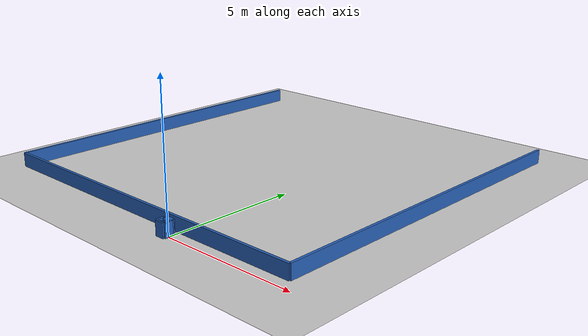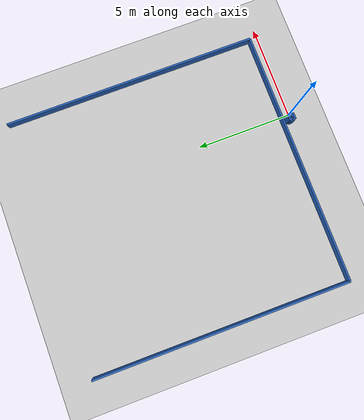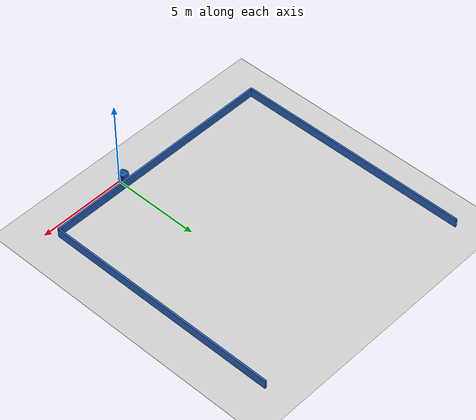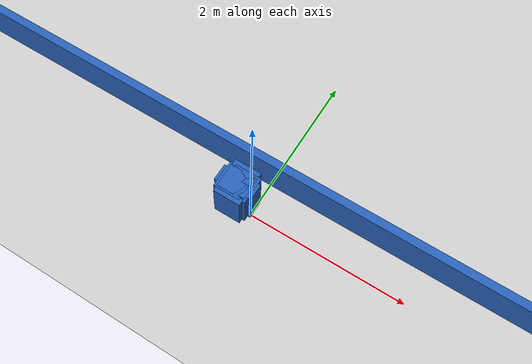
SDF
<?xml version="1.0" ?>
    <sdf version="1.5">
      <world name="default">
        <!-- A global light source -->
        <include>
          <uri>model://sun</uri>
        </include>
        <!-- A ground plane -->
        <include>
          <uri>model://ground_plane</uri>
        </include>

    <model name='libopen_space_final_T2B_87_56'>
      <static>1</static>
      <pose frame=''>-0.225000 0.075000 0.000000 0.000000 0.000000 0.000000</pose>
      <link name='link'>
        <inertial>
          <mass>1</mass>
          <inertia>
            <ixx>0.145833</ixx>
            <ixy>0</ixy>
            <ixz>0</ixz>
            <iyy>0.145833</iyy>
            <iyz>0</iyz>
            <izz>0.125</izz>
          </inertia>
        </inertial>
        <collision name='collision'>
          <geometry>
            <box>
              <size>0.26 0.35 1</size>
            </box>
          </geometry>
          <max_contacts>10</max_contacts>
          <surface>
            <contact>
              <ode/>
            </contact>
            <bounce/>
            <friction>
              <torsional>
                <ode/>
              </torsional>
              <ode/>
            </friction>
          </surface>
        </collision>
        <visual name='visual'>
          <geometry>
            <box>
              <size>0.26 0.35 1</size>
            </box>
          </geometry>
	    <material>
              <ambient>0.152000 0.379000 0.720000 1</ambient>
	      <diffuse>0.152000 0.379000 0.720000 1</diffuse>
          </material>
          <material>
            <script>
              <name>Gazebo/Grey</name>
              <uri>file://media/materials/scripts/gazebo.material</uri>
            </script>
          </material>
        </visual>
        <self_collide>0</self_collide>
        <kinematic>0</kinematic>
        <gravity>1</gravity>
      </link>
      <plugin name='libopen_space_final_T2B_87_56' filename='libopen_space_final_T2B_87_56.so'/>
    </model>

    <model name='libopen_space_final_T2B_125_59'>
      <static>1</static>
      <pose frame=''>-0.225000 0.075000 0.000000 0.000000 0.000000 0.000000</pose>
      <link name='link'>
        <inertial>
          <mass>1</mass>
          <inertia>
            <ixx>0.145833</ixx>
            <ixy>0</ixy>
            <ixz>0</ixz>
            <iyy>0.145833</iyy>
            <iyz>0</iyz>
            <izz>0.125</izz>
          </inertia>
        </inertial>
        <collision name='collision'>
          <geometry>
            <box>
              <size>0.31 0.28 1</size>
            </box>
          </geometry>
          <max_contacts>10</max_contacts>
          <surface>
            <contact>
              <ode/>
            </contact>
            <bounce/>
            <friction>
              <torsional>
                <ode/>
              </torsional>
              <ode/>
            </friction>
          </surface>
        </collision>
        <visual name='visual'>
          <geometry>
            <box>
              <size>0.31 0.28 1</size>
            </box>
          </geometry>
	    <material>
              <ambient>0.152000 0.379000 0.720000 1</ambient>
	      <diffuse>0.152000 0.379000 0.720000 1</diffuse>
          </material>
          <material>
            <script>
              <name>Gazebo/Grey</name>
              <uri>file://media/materials/scripts/gazebo.material</uri>
            </script>
          </material>
        </visual>
        <self_collide>0</self_collide>
        <kinematic>0</kinematic>
        <gravity>1</gravity>
      </link>
      <plugin name='libopen_space_final_T2B_125_59' filename='libopen_space_final_T2B_125_59.so'/>
    </model>

    <model name='libopen_space_final_T2B_126_41'>
      <static>1</static>
      <pose frame=''>-0.225000 0.075000 0.000000 0.000000 0.000000 0.000000</pose>
      <link name='link'>
        <inertial>
          <mass>1</mass>
          <inertia>
            <ixx>0.145833</ixx>
            <ixy>0</ixy>
            <ixz>0</ixz>
            <iyy>0.145833</iyy>
            <iyz>0</iyz>
            <izz>0.125</izz>
          </inertia>
        </inertial>
        <collision name='collision'>
          <geometry>
            <box>
              <size>0.13 0.15 1</size>
            </box>
          </geometry>
          <max_contacts>10</max_contacts>
          <surface>
            <contact>
              <ode/>
            </contact>
            <bounce/>
            <friction>
              <torsional>
                <ode/>
              </torsional>
              <ode/>
            </friction>
          </surface>
        </collision>
        <visual name='visual'>
          <geometry>
            <box>
              <size>0.13 0.15 1</size>
            </box>
          </geometry>
	    <material>
              <ambient>0.152000 0.379000 0.720000 1</ambient>
	      <diffuse>0.152000 0.379000 0.720000 1</diffuse>
          </material>
          <material>
            <script>
              <name>Gazebo/Grey</name>
              <uri>file://media/materials/scripts/gazebo.material</uri>
            </script>
          </material>
        </visual>
        <self_collide>0</self_collide>
        <kinematic>0</kinematic>
        <gravity>1</gravity>
      </link>
      <plugin name='libopen_space_final_T2B_126_41' filename='libopen_space_final_T2B_126_41.so'/>
    </model>

    <model name='libopen_space_final_T2B_94_79'>
      <static>1</static>
      <pose frame=''>-0.225000 0.075000 0.000000 0.000000 0.000000 0.000000</pose>
      <link name='link'>
        <inertial>
          <mass>1</mass>
          <inertia>
            <ixx>0.145833</ixx>
            <ixy>0</ixy>
            <ixz>0</ixz>
            <iyy>0.145833</iyy>
            <iyz>0</iyz>
            <izz>0.125</izz>
          </inertia>
        </inertial>
        <collision name='collision'>
          <geometry>
            <box>
              <size>0.34 0.46 1</size>
            </box>
          </geometry>
          <max_contacts>10</max_contacts>
          <surface>
            <contact>
              <ode/>
            </contact>
            <bounce/>
            <friction>
              <torsional>
                <ode/>
              </torsional>
              <ode/>
            </friction>
          </surface>
        </collision>
        <visual name='visual'>
          <geometry>
            <box>
              <size>0.34 0.46 1</size>
            </box>
          </geometry>
	    <material>
              <ambient>0.152000 0.379000 0.720000 1</ambient>
	      <diffuse>0.152000 0.379000 0.720000 1</diffuse>
          </material>
          <material>
            <script>
              <name>Gazebo/Grey</name>
              <uri>file://media/materials/scripts/gazebo.material</uri>
            </script>
          </material>
        </visual>
        <self_collide>0</self_collide>
        <kinematic>0</kinematic>
        <gravity>1</gravity>
      </link>
      <plugin name='libopen_space_final_T2B_94_79' filename='libopen_space_final_T2B_94_79.so'/>
    </model>

    <model name='libopen_space_final_T2B_105_8'>
      <static>1</static>
      <pose frame=''>-0.225000 0.075000 0.000000 0.000000 0.000000 0.000000</pose>
      <link name='link'>
        <inertial>
          <mass>1</mass>
          <inertia>
            <ixx>0.145833</ixx>
            <ixy>0</ixy>
            <ixz>0</ixz>
            <iyy>0.145833</iyy>
            <iyz>0</iyz>
            <izz>0.125</izz>
          </inertia>
        </inertial>
        <collision name='collision'>
          <geometry>
            <box>
              <size>0.35 0.27 1</size>
            </box>
          </geometry>
          <max_contacts>10</max_contacts>
          <surface>
            <contact>
              <ode/>
            </contact>
            <bounce/>
            <friction>
              <torsional>
                <ode/>
              </torsional>
              <ode/>
            </friction>
          </surface>
        </collision>
        <visual name='visual'>
          <geometry>
            <box>
              <size>0.35 0.27 1</size>
            </box>
          </geometry>
	    <material>
              <ambient>0.152000 0.379000 0.720000 1</ambient>
	      <diffuse>0.152000 0.379000 0.720000 1</diffuse>
          </material>
          <material>
            <script>
              <name>Gazebo/Grey</name>
              <uri>file://media/materials/scripts/gazebo.material</uri>
            </script>
          </material>
        </visual>
        <self_collide>0</self_collide>
        <kinematic>0</kinematic>
        <gravity>1</gravity>
      </link>
      <plugin name='libopen_space_final_T2B_105_8' filename='libopen_space_final_T2B_105_8.so'/>
    </model>

    <model name='libopen_space_final_T2B_121_6'>
      <static>1</static>
      <pose frame=''>-0.225000 0.075000 0.000000 0.000000 0.000000 0.000000</pose>
      <link name='link'>
        <inertial>
          <mass>1</mass>
          <inertia>
            <ixx>0.145833</ixx>
            <ixy>0</ixy>
            <ixz>0</ixz>
            <iyy>0.145833</iyy>
            <iyz>0</iyz>
            <izz>0.125</izz>
          </inertia>
        </inertial>
        <collision name='collision'>
          <geometry>
            <box>
              <size>0.35 0.30 1</size>
            </box>
          </geometry>
          <max_contacts>10</max_contacts>
          <surface>
            <contact>
              <ode/>
            </contact>
            <bounce/>
            <friction>
              <torsional>
                <ode/>
              </torsional>
              <ode/>
            </friction>
          </surface>
        </collision>
        <visual name='visual'>
          <geometry>
            <box>
              <size>0.35 0.30 1</size>
            </box>
          </geometry>
	    <material>
              <ambient>0.152000 0.379000 0.720000 1</ambient>
	      <diffuse>0.152000 0.379000 0.720000 1</diffuse>
          </material>
          <material>
            <script>
              <name>Gazebo/Grey</name>
              <uri>file://media/materials/scripts/gazebo.material</uri>
            </script>
          </material>
        </visual>
        <self_collide>0</self_collide>
        <kinematic>0</kinematic>
        <gravity>1</gravity>
      </link>
      <plugin name='libopen_space_final_T2B_121_6' filename='libopen_space_final_T2B_121_6.so'/>
    </model>

    <model name='libopen_space_final_T2B_114_22'>
      <static>1</static>
      <pose frame=''>-0.225000 0.075000 0.000000 0.000000 0.000000 0.000000</pose>
      <link name='link'>
        <inertial>
          <mass>1</mass>
          <inertia>
            <ixx>0.145833</ixx>
            <ixy>0</ixy>
            <ixz>0</ixz>
            <iyy>0.145833</iyy>
            <iyz>0</iyz>
            <izz>0.125</izz>
          </inertia>
        </inertial>
        <collision name='collision'>
          <geometry>
            <box>
              <size>0.48 0.21 1</size>
            </box>
          </geometry>
          <max_contacts>10</max_contacts>
          <surface>
            <contact>
              <ode/>
            </contact>
            <bounce/>
            <friction>
              <torsional>
                <ode/>
              </torsional>
              <ode/>
            </friction>
          </surface>
        </collision>
        <visual name='visual'>
          <geometry>
            <box>
              <size>0.48 0.21 1</size>
            </box>
          </geometry>
	    <material>
              <ambient>0.152000 0.379000 0.720000 1</ambient>
	      <diffuse>0.152000 0.379000 0.720000 1</diffuse>
          </material>
          <material>
            <script>
              <name>Gazebo/Grey</name>
              <uri>file://media/materials/scripts/gazebo.material</uri>
            </script>
          </material>
        </visual>
        <self_collide>0</self_collide>
        <kinematic>0</kinematic>
        <gravity>1</gravity>
      </link>
      <plugin name='libopen_space_final_T2B_114_22' filename='libopen_space_final_T2B_114_22.so'/>
    </model>

    <model name='libopen_space_final_T2B_134_32'>
      <static>1</static>
      <pose frame=''>-0.225000 0.075000 0.000000 0.000000 0.000000 0.000000</pose>
      <link name='link'>
        <inertial>
          <mass>1</mass>
          <inertia>
            <ixx>0.145833</ixx>
            <ixy>0</ixy>
            <ixz>0</ixz>
            <iyy>0.145833</iyy>
            <iyz>0</iyz>
            <izz>0.125</izz>
          </inertia>
        </inertial>
        <collision name='collision'>
          <geometry>
            <box>
              <size>0.41 0.35 1</size>
            </box>
          </geometry>
          <max_contacts>10</max_contacts>
          <surface>
            <contact>
              <ode/>
            </contact>
            <bounce/>
            <friction>
              <torsional>
                <ode/>
              </torsional>
              <ode/>
            </friction>
          </surface>
        </collision>
        <visual name='visual'>
          <geometry>
            <box>
              <size>0.41 0.35 1</size>
            </box>
          </geometry>
	    <material>
              <ambient>0.152000 0.379000 0.720000 1</ambient>
	      <diffuse>0.152000 0.379000 0.720000 1</diffuse>
          </material>
          <material>
            <script>
              <name>Gazebo/Grey</name>
              <uri>file://media/materials/scripts/gazebo.material</uri>
            </script>
          </material>
        </visual>
        <self_collide>0</self_collide>
        <kinematic>0</kinematic>
        <gravity>1</gravity>
      </link>
      <plugin name='libopen_space_final_T2B_134_32' filename='libopen_space_final_T2B_134_32.so'/>
    </model>

    <model name='libopen_space_final_T2B_57_10'>
      <static>1</static>
      <pose frame=''>-0.225000 0.075000 0.000000 0.000000 0.000000 0.000000</pose>
      <link name='link'>
        <inertial>
          <mass>1</mass>
          <inertia>
            <ixx>0.145833</ixx>
            <ixy>0</ixy>
            <ixz>0</ixz>
            <iyy>0.145833</iyy>
            <iyz>0</iyz>
            <izz>0.125</izz>
          </inertia>
        </inertial>
        <collision name='collision'>
          <geometry>
            <box>
              <size>0.31 0.26 1</size>
            </box>
          </geometry>
          <max_contacts>10</max_contacts>
          <surface>
            <contact>
              <ode/>
            </contact>
            <bounce/>
            <friction>
              <torsional>
                <ode/>
              </torsional>
              <ode/>
            </friction>
          </surface>
        </collision>
        <visual name='visual'>
          <geometry>
            <box>
              <size>0.31 0.26 1</size>
            </box>
          </geometry>
	    <material>
              <ambient>0.152000 0.379000 0.720000 1</ambient>
	      <diffuse>0.152000 0.379000 0.720000 1</diffuse>
          </material>
          <material>
            <script>
              <name>Gazebo/Grey</name>
              <uri>file://media/materials/scripts/gazebo.material</uri>
            </script>
          </material>
        </visual>
        <self_collide>0</self_collide>
        <kinematic>0</kinematic>
        <gravity>1</gravity>
      </link>
      <plugin name='libopen_space_final_T2B_57_10' filename='libopen_space_final_T2B_57_10.so'/>
    </model>

    <model name='libopen_space_final_T2B_73_39'>
      <static>1</static>
      <pose frame=''>-0.225000 0.075000 0.000000 0.000000 0.000000 0.000000</pose>
      <link name='link'>
        <inertial>
          <mass>1</mass>
          <inertia>
            <ixx>0.145833</ixx>
            <ixy>0</ixy>
            <ixz>0</ixz>
            <iyy>0.145833</iyy>
            <iyz>0</iyz>
            <izz>0.125</izz>
          </inertia>
        </inertial>
        <collision name='collision'>
          <geometry>
            <box>
              <size>0.11 0.21 1</size>
            </box>
          </geometry>
          <max_contacts>10</max_contacts>
          <surface>
            <contact>
              <ode/>
            </contact>
            <bounce/>
            <friction>
              <torsional>
                <ode/>
              </torsional>
              <ode/>
            </friction>
          </surface>
        </collision>
        <visual name='visual'>
          <geometry>
            <box>
              <size>0.11 0.21 1</size>
            </box>
          </geometry>
	    <material>
              <ambient>0.152000 0.379000 0.720000 1</ambient>
	      <diffuse>0.152000 0.379000 0.720000 1</diffuse>
          </material>
          <material>
            <script>
              <name>Gazebo/Grey</name>
              <uri>file://media/materials/scripts/gazebo.material</uri>
            </script>
          </material>
        </visual>
        <self_collide>0</self_collide>
        <kinematic>0</kinematic>
        <gravity>1</gravity>
      </link>
      <plugin name='libopen_space_final_T2B_73_39' filename='libopen_space_final_T2B_73_39.so'/>
    </model>

        <model name='bottom_wall'>
          <static>1</static>
          <pose frame=''>-2.25 0.5 0.000000 0.000000 0.000000 1.57079632</pose>
          <link name='link'>
            <inertial>
            <mass>1</mass>
            <inertia>
              <ixx>0.145833</ixx>
              <ixy>0</ixy>
              <ixz>0</ixz>
              <iyy>0.145833</iyy>
              <iyz>0</iyz>
              <izz>0.125</izz>
            </inertia>
            </inertial>
            <collision name='collision'>
            <geometry>
              <box>
              <size>0.1 13.5 1</size>
              </box>
            </geometry>
            <max_contacts>10</max_contacts>
            <surface>
              <contact>
              <ode/>
              </contact>
              <bounce/>
              <friction>
              <torsional>
                <ode/>
              </torsional>
              <ode/>
              </friction>
            </surface>
            </collision>
            <visual name='visual'>
            <geometry>
              <box>
              <size>0.1 13.5 1</size>
              </box>
            </geometry>
            <material>
              <ambient>0.152000 0.379000 0.720000 1</ambient>
            <diffuse>0.152000 0.379000 0.720000 1</diffuse>
            </material>
            <material>
              <script>
              <name>Gazebo/Grey</name>
              <uri>file://media/materials/scripts/gazebo.material</uri>
              </script>
            </material>
            </visual>
            <self_collide>0</self_collide>
            <kinematic>0</kinematic>
            <gravity>1</gravity>
          </link>
        </model>

        <model name='left_wall'>
          <static>1</static>
          <pose frame=''>-9 7.25 0.000000 0.000000 0.000000 0.000000</pose>
          <link name='link'>
            <inertial>
            <mass>1</mass>
            <inertia>
              <ixx>0.145833</ixx>
              <ixy>0</ixy>
              <ixz>0</ixz>
              <iyy>0.145833</iyy>
              <iyz>0</iyz>
              <izz>0.125</izz>
            </inertia>
            </inertial>
            <collision name='collision'>
            <geometry>
              <box>
              <size>0.1 13.5 1</size>
              </box>
            </geometry>
            <max_contacts>10</max_contacts>
            <surface>
              <contact>
              <ode/>
              </contact>
              <bounce/>
              <friction>
              <torsional>
                <ode/>
              </torsional>
              <ode/>
              </friction>
            </surface>
            </collision>
            <visual name='visual'>
            <geometry>
              <box>
              <size>0.1 13.5 1</size>
              </box>
            </geometry>
            <material>
              <ambient>0.152000 0.379000 0.720000 1</ambient>
            <diffuse>0.152000 0.379000 0.720000 1</diffuse>
            </material>
            <material>
              <script>
              <name>Gazebo/Grey</name>
              <uri>file://media/materials/scripts/gazebo.material</uri>
              </script>
            </material>
            </visual>
            <self_collide>0</self_collide>
            <kinematic>0</kinematic>
            <gravity>1</gravity>
          </link>
        </model>

        <model name='right_wall'>
          <static>1</static>
          <pose frame=''>4.5 7.25 0.000000 0.000000 0.000000 0.000000</pose>
          <link name='link'>
            <inertial>
            <mass>1</mass>
            <inertia>
              <ixx>0.145833</ixx>
              <ixy>0</ixy>
              <ixz>0</ixz>
              <iyy>0.145833</iyy>
              <iyz>0</iyz>
              <izz>0.125</izz>
            </inertia>
            </inertial>
            <collision name='collision'>
            <geometry>
              <box>
              <size>0.1 13.5 1</size>
              </box>
            </geometry>
            <max_contacts>10</max_contacts>
            <surface>
              <contact>
              <ode/>
              </contact>
              <bounce/>
              <friction>
              <torsional>
                <ode/>
              </torsional>
              <ode/>
              </friction>
            </surface>
            </collision>
            <visual name='visual'>
            <geometry>
              <box>
              <size>0.1 13.5 1</size>
              </box>
            </geometry>
            <material>
              <ambient>0.152000 0.379000 0.720000 1</ambient>
            <diffuse>0.152000 0.379000 0.720000 1</diffuse>
            </material>
            <material>
              <script>
              <name>Gazebo/Grey</name>
              <uri>file://media/materials/scripts/gazebo.material</uri>
              </script>
            </material>
            </visual>
            <self_collide>0</self_collide>
            <kinematic>0</kinematic>
            <gravity>1</gravity>
          </link>
        </model>

      </world>
    </sdf>"
